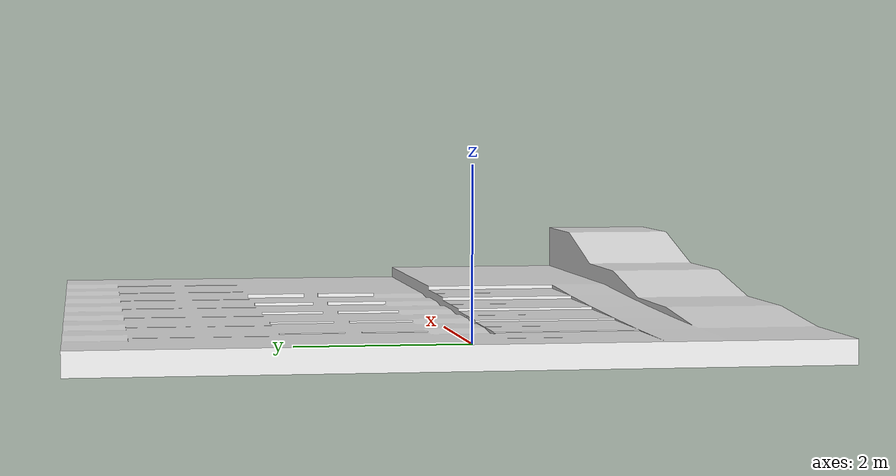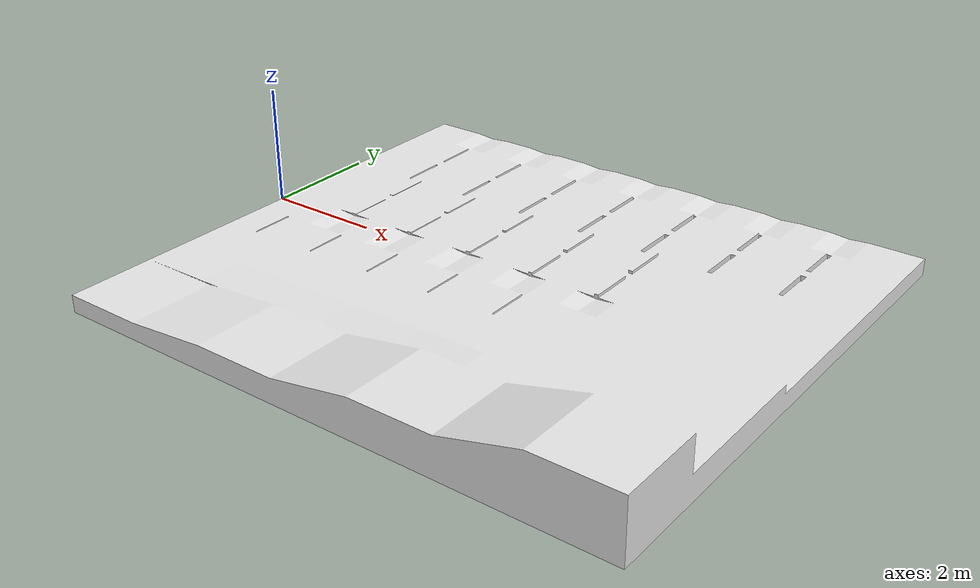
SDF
<?xml version='1.0'?>
<sdf version="1.4">
<model name="robotnik_test_ground_v1">
  <pose>0 0 0 0 0 0</pose>
  <static>true</static>

    <link name='robotnik_test_ground_v1'>
	<pose> 0 0.03 0.0 0 0 0</pose>
		<inertial>
			<mass>0.000001</mass>
		</inertial>
		<collision name="collision">
			<geometry>
			<mesh>
				<uri>model://robotnik_test_ground_v1/meshes/robotnik_test_ground_v1.stl</uri>
			</mesh>
			</geometry>
			<surface>
			  <friction>
				<ode>
					<mu>100</mu>
					<mu2>100</mu2>
				</ode>
			  </friction>
			</surface>
		</collision>
		<visual name="visual">
			<geometry>
				<mesh>
					<uri>model://robotnik_test_ground_v1/meshes/robotnik_test_ground_v1.stl</uri>
				</mesh>
			</geometry>
			<material>
				<script>
					<uri>file://media/materials/scripts/gazebo.material</uri>
					<name>Gazebo/White</name>
				</script>
			</material>
		</visual>
	</link>

  </model>
</sdf>
